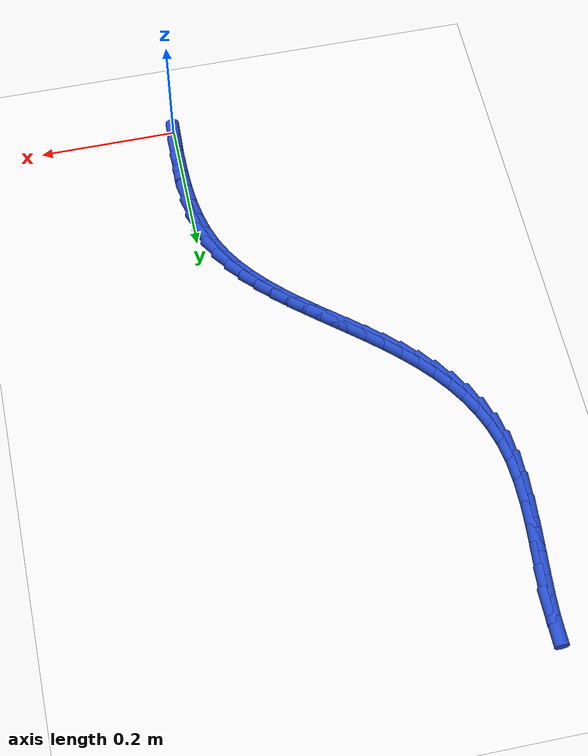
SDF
<sdf version="1.6">
 <world name="default">
  <model name="ground_plane">
   <static>1</static>
   <link name="link">
    <collision name="collision">
     <geometry><plane><normal>0 0 1</normal><size>100 100</size></plane></geometry>
     <surface><friction><ode><mu>100</mu><mu2>50</mu2></ode></friction></surface>
    </collision>
    <visual name="visual">
     <cast_shadows>0</cast_shadows>
     <geometry><plane><normal>0 0 1</normal><size>100 100</size></plane></geometry>
     <material>
      <script><uri>file://media/materials/scripts/gazebo.material</uri><name>Gazebo/WhiteGlow</name></script>
     </material>
    </visual>
   </link>
  </model>
  <model name="line">
   <link name="link_2">
    <pose>0.0016596048798578349 0.05573623796971701 0.01 0 1.57 -1.5633033248760873</pose>
    <collision name="collision">
     <geometry><cylinder><radius>0.01</radius><length>0.08</length></cylinder></geometry>
    </collision>
    <visual name="visual">
     <material>
      <script><name>Gazebo/Blue</name><uri>file://media/materials/scripts/gazebo.material</uri></script>
     </material>
     <geometry><cylinder><radius>0.01</radius><length>0.08</length></cylinder></geometry>
    </visual>
   </link>
   <link name="link_3">
    <pose>0.0014514285237242834 0.08351848897521835 0.01 0 1.57 -1.5227702748810366</pose>
    <collision name="collision">
     <geometry><cylinder><radius>0.01</radius><length>0.08</length></cylinder></geometry>
    </collision>
    <visual name="visual">
     <material>
      <script><name>Gazebo/Blue</name><uri>file://media/materials/scripts/gazebo.material</uri></script>
     </material>
     <geometry><cylinder><radius>0.01</radius><length>0.08</length></cylinder></geometry>
    </visual>
   </link>
   <link name="link_4">
    <pose>0.00013251821875655137 0.11095976456533392 0.01 0 1.57 -1.4691044345274904</pose>
    <collision name="collision">
     <geometry><cylinder><radius>0.01</radius><length>0.08</length></cylinder></geometry>
    </collision>
    <visual name="visual">
     <material>
      <script><name>Gazebo/Blue</name><uri>file://media/materials/scripts/gazebo.material</uri></script>
     </material>
     <geometry><cylinder><radius>0.01</radius><length>0.08</length></cylinder></geometry>
    </visual>
   </link>
   <link name="link_5">
    <pose>-0.002611187098639764 0.1378472671682029 0.01 0 1.57 -1.400843733810222</pose>
    <collision name="collision">
     <geometry><cylinder><radius>0.01</radius><length>0.08</length></cylinder></geometry>
    </collision>
    <visual name="visual">
     <material>
      <script><name>Gazebo/Blue</name><uri>file://media/materials/scripts/gazebo.material</uri></script>
     </material>
     <geometry><cylinder><radius>0.01</radius><length>0.08</length></cylinder></geometry>
    </visual>
   </link>
   <link name="link_6">
    <pose>-0.007093748492059067 0.16396819921196445 0.01 0 1.57 -1.3164777483191943</pose>
    <collision name="collision">
     <geometry><cylinder><radius>0.01</radius><length>0.08</length></cylinder></geometry>
    </collision>
    <visual name="visual">
     <material>
      <script><name>Gazebo/Blue</name><uri>file://media/materials/scripts/gazebo.material</uri></script>
     </material>
     <geometry><cylinder><radius>0.01</radius><length>0.08</length></cylinder></geometry>
    </visual>
   </link>
   <link name="link_7">
    <pose>-0.013629227025095763 0.18910976312475786 0.01 0 1.57 -1.2149048669875717</pose>
    <collision name="collision">
     <geometry><cylinder><radius>0.01</radius><length>0.08</length></cylinder></geometry>
    </collision>
    <visual name="visual">
     <material>
      <script><name>Gazebo/Blue</name><uri>file://media/materials/scripts/gazebo.material</uri></script>
     </material>
     <geometry><cylinder><radius>0.01</radius><length>0.08</length></cylinder></geometry>
    </visual>
   </link>
   <link name="link_8">
    <pose>-0.022531683761344255 0.2130591613347223 0.01 0 1.57 -1.0999398042648565</pose>
    <collision name="collision">
     <geometry><cylinder><radius>0.01</radius><length>0.08</length></cylinder></geometry>
    </collision>
    <visual name="visual">
     <material>
      <script><name>Gazebo/Blue</name><uri>file://media/materials/scripts/gazebo.material</uri></script>
     </material>
     <geometry><cylinder><radius>0.01</radius><length>0.08</length></cylinder></geometry>
    </visual>
   </link>
   <link name="link_9">
    <pose>-0.03403341591915063 0.23565393602419726 0.01 0 1.57 -0.992904981831658</pose>
    <collision name="collision">
     <geometry><cylinder><radius>0.01</radius><length>0.08</length></cylinder></geometry>
    </collision>
    <visual name="visual">
     <material>
      <script><name>Gazebo/Blue</name><uri>file://media/materials/scripts/gazebo.material</uri></script>
     </material>
     <geometry><cylinder><radius>0.01</radius><length>0.08</length></cylinder></geometry>
    </visual>
   </link>
   <link name="link_10">
    <pose>-0.04794767366931354 0.25698962513523477 0.01 0 1.57 -0.9020295866422652</pose>
    <collision name="collision">
     <geometry><cylinder><radius>0.01</radius><length>0.08</length></cylinder></geometry>
    </collision>
    <visual name="visual">
     <material>
      <script><name>Gazebo/Blue</name><uri>file://media/materials/scripts/gazebo.material</uri></script>
     </material>
     <geometry><cylinder><radius>0.01</radius><length>0.08</length></cylinder></geometry>
    </visual>
   </link>
   <link name="link_11">
    <pose>-0.06395382332059835 0.2772441952271527 0.01 0 1.57 -0.8277685829872988</pose>
    <collision name="collision">
     <geometry><cylinder><radius>0.01</radius><length>0.08</length></cylinder></geometry>
    </collision>
    <visual name="visual">
     <material>
      <script><name>Gazebo/Blue</name><uri>file://media/materials/scripts/gazebo.material</uri></script>
     </material>
     <geometry><cylinder><radius>0.01</radius><length>0.08</length></cylinder></geometry>
    </visual>
   </link>
   <link name="link_12">
    <pose>-0.08173117221646523 0.296595649162588 0.01 0 1.57 -0.7695091924597142</pose>
    <collision name="collision">
     <geometry><cylinder><radius>0.01</radius><length>0.08</length></cylinder></geometry>
    </collision>
    <visual name="visual">
     <material>
      <script><name>Gazebo/Blue</name><uri>file://media/materials/scripts/gazebo.material</uri></script>
     </material>
     <geometry><cylinder><radius>0.01</radius><length>0.08</length></cylinder></geometry>
    </visual>
   </link>
   <link name="link_13">
    <pose>-0.10095902770037428 0.31522198980417754 0.01 0 1.57 -0.726190054199158</pose>
    <collision name="collision">
     <geometry><cylinder><radius>0.01</radius><length>0.08</length></cylinder></geometry>
    </collision>
    <visual name="visual">
     <material>
      <script><name>Gazebo/Blue</name><uri>file://media/materials/scripts/gazebo.material</uri></script>
     </material>
     <geometry><cylinder><radius>0.01</radius><length>0.08</length></cylinder></geometry>
    </visual>
   </link>
   <link name="link_14">
    <pose>-0.1213166971157856 0.3333012200145582 0.01 0 1.57 -0.6967182305172623</pose>
    <collision name="collision">
     <geometry><cylinder><radius>0.01</radius><length>0.08</length></cylinder></geometry>
    </collision>
    <visual name="visual">
     <material>
      <script><name>Gazebo/Blue</name><uri>file://media/materials/scripts/gazebo.material</uri></script>
     </material>
     <geometry><cylinder><radius>0.01</radius><length>0.08</length></cylinder></geometry>
    </visual>
   </link>
   <link name="link_15">
    <pose>-0.14248348780615938 0.35101134265636696 0.01 0 1.57 -0.6802031845086991</pose>
    <collision name="collision">
     <geometry><cylinder><radius>0.01</radius><length>0.08</length></cylinder></geometry>
    </collision>
    <visual name="visual">
     <material>
      <script><name>Gazebo/Blue</name><uri>file://media/materials/scripts/gazebo.material</uri></script>
     </material>
     <geometry><cylinder><radius>0.01</radius><length>0.08</length></cylinder></geometry>
    </visual>
   </link>
   <link name="link_16">
    <pose>-0.1641387071149557 0.36853036059224076 0.01 0 1.57 -0.6760681796360968</pose>
    <collision name="collision">
     <geometry><cylinder><radius>0.01</radius><length>0.08</length></cylinder></geometry>
    </collision>
    <visual name="visual">
     <material>
      <script><name>Gazebo/Blue</name><uri>file://media/materials/scripts/gazebo.material</uri></script>
     </material>
     <geometry><cylinder><radius>0.01</radius><length>0.08</length></cylinder></geometry>
    </visual>
   </link>
   <link name="link_17">
    <pose>-0.18596166238563477 0.3860362766848165 0.01 0 1.57 -0.6840913972933165</pose>
    <collision name="collision">
     <geometry><cylinder><radius>0.01</radius><length>0.08</length></cylinder></geometry>
    </collision>
    <visual name="visual">
     <material>
      <script><name>Gazebo/Blue</name><uri>file://media/materials/scripts/gazebo.material</uri></script>
     </material>
     <geometry><cylinder><radius>0.01</radius><length>0.08</length></cylinder></geometry>
    </visual>
   </link>
   <link name="link_18">
    <pose>-0.20763166096165664 0.4037070937967312 0.01 0 1.57 -0.7044070738249729</pose>
    <collision name="collision">
     <geometry><cylinder><radius>0.01</radius><length>0.08</length></cylinder></geometry>
    </collision>
    <visual name="visual">
     <material>
      <script><name>Gazebo/Blue</name><uri>file://media/materials/scripts/gazebo.material</uri></script>
     </material>
     <geometry><cylinder><radius>0.01</radius><length>0.08</length></cylinder></geometry>
    </visual>
   </link>
   <link name="link_19">
    <pose>-0.22882801018648152 0.4217208147906216 0.01 0 1.57 -0.7374713700381726</pose>
    <collision name="collision">
     <geometry><cylinder><radius>0.01</radius><length>0.08</length></cylinder></geometry>
    </collision>
    <visual name="visual">
     <material>
      <script><name>Gazebo/Blue</name><uri>file://media/materials/scripts/gazebo.material</uri></script>
     </material>
     <geometry><cylinder><radius>0.01</radius><length>0.08</length></cylinder></geometry>
    </visual>
   </link>
   <link name="link_20">
    <pose>-0.2492301631041366 0.4402554234602079 0.01 0 1.57 -0.7832770899331617</pose>
    <collision name="collision">
     <geometry><cylinder><radius>0.01</radius><length>0.08</length></cylinder></geometry>
    </collision>
    <visual name="visual">
     <material>
      <script><name>Gazebo/Blue</name><uri>file://media/materials/scripts/gazebo.material</uri></script>
     </material>
     <geometry><cylinder><radius>0.01</radius><length>0.08</length></cylinder></geometry>
    </visual>
   </link>
   <link name="link_21">
    <pose>-0.2685421745378144 0.45948568378141497 0.01 0 1.57 -0.8409162412115178</pose>
    <collision name="collision">
     <geometry><cylinder><radius>0.01</radius><length>0.08</length></cylinder></geometry>
    </collision>
    <visual name="visual">
     <material>
      <script><name>Gazebo/Blue</name><uri>file://media/materials/scripts/gazebo.material</uri></script>
     </material>
     <geometry><cylinder><radius>0.01</radius><length>0.08</length></cylinder></geometry>
    </visual>
   </link>
   <link name="link_22">
    <pose>-0.2865201827230955 0.47957954318665835 0.01 0 1.57 -0.9104443464703046</pose>
    <collision name="collision">
     <geometry><cylinder><radius>0.01</radius><length>0.08</length></cylinder></geometry>
    </collision>
    <visual name="visual">
     <material>
      <script><name>Gazebo/Blue</name><uri>file://media/materials/scripts/gazebo.material</uri></script>
     </material>
     <geometry><cylinder><radius>0.01</radius><length>0.08</length></cylinder></geometry>
    </visual>
   </link>
   <link name="link_23">
    <pose>-0.3029269577387636 0.5007040811497155 0.01 0 1.57 -0.9916290297961323</pose>
    <collision name="collision">
     <geometry><cylinder><radius>0.01</radius><length>0.08</length></cylinder></geometry>
    </collision>
    <visual name="visual">
     <material>
      <script><name>Gazebo/Blue</name><uri>file://media/materials/scripts/gazebo.material</uri></script>
     </material>
     <geometry><cylinder><radius>0.01</radius><length>0.08</length></cylinder></geometry>
    </visual>
   </link>
   <link name="link_24">
    <pose>-0.317525269663603 0.5230263771443634 0.01 0 1.57 -1.0834892252430475</pose>
    <collision name="collision">
     <geometry><cylinder><radius>0.01</radius><length>0.08</length></cylinder></geometry>
    </collision>
    <visual name="visual">
     <material>
      <script><name>Gazebo/Blue</name><uri>file://media/materials/scripts/gazebo.material</uri></script>
     </material>
     <geometry><cylinder><radius>0.01</radius><length>0.08</length></cylinder></geometry>
    </visual>
   </link>
   <link name="link_25">
    <pose>-0.3300778885763975 0.546713510644379 0.01 0 1.57 -1.1840815447950934</pose>
    <collision name="collision">
     <geometry><cylinder><radius>0.01</radius><length>0.08</length></cylinder></geometry>
    </collision>
    <visual name="visual">
     <material>
      <script><name>Gazebo/Blue</name><uri>file://media/materials/scripts/gazebo.material</uri></script>
     </material>
     <geometry><cylinder><radius>0.01</radius><length>0.08</length></cylinder></geometry>
    </visual>
   </link>
   <link name="link_26">
    <pose>-0.3403475845559311 0.5719325611235392 0.01 0 1.57 -1.2904826595977297</pose>
    <collision name="collision">
     <geometry><cylinder><radius>0.01</radius><length>0.08</length></cylinder></geometry>
    </collision>
    <visual name="visual">
     <material>
      <script><name>Gazebo/Blue</name><uri>file://media/materials/scripts/gazebo.material</uri></script>
     </material>
     <geometry><cylinder><radius>0.01</radius><length>0.08</length></cylinder></geometry>
    </visual>
   </link>
   <link name="link_27">
    <pose>-0.3480971276809878 0.5988506080556208 0.01 0 1.57 -1.3990666883644753</pose>
    <collision name="collision">
     <geometry><cylinder><radius>0.01</radius><length>0.08</length></cylinder></geometry>
    </collision>
    <visual name="visual">
     <material>
      <script><name>Gazebo/Blue</name><uri>file://media/materials/scripts/gazebo.material</uri></script>
     </material>
     <geometry><cylinder><radius>0.01</radius><length>0.08</length></cylinder></geometry>
    </visual>
   </link>
   <link name="link_28">
    <pose>-0.3530893740554741 0.6276346554776399 0.01 0 1.57 -1.4995953994509539</pose>
    <collision name="collision">
     <geometry><cylinder><radius>0.01</radius><length>0.08</length></cylinder></geometry>
    </collision>
    <visual name="visual">
     <material>
      <script><name>Gazebo/Blue</name><uri>file://media/materials/scripts/gazebo.material</uri></script>
     </material>
     <geometry><cylinder><radius>0.01</radius><length>0.08</length></cylinder></geometry>
    </visual>
   </link>
   <link name="link_29">
    <pose>-0.35527551323244955 0.6582865549102765 0.01 0 1.57 1.568259517518006</pose>
    <collision name="collision">
     <geometry><cylinder><radius>0.01</radius><length>0.08</length></cylinder></geometry>
    </collision>
    <visual name="visual">
     <material>
      <script><name>Gazebo/Blue</name><uri>file://media/materials/scripts/gazebo.material</uri></script>
     </material>
     <geometry><cylinder><radius>0.01</radius><length>0.08</length></cylinder></geometry>
    </visual>
   </link>
   <link name="link_30">
    <pose>-0.3551943190750306 0.6902928960988796 0.01 0 1.57 1.5190675632285404</pose>
    <collision name="collision">
     <geometry><cylinder><radius>0.01</radius><length>0.08</length></cylinder></geometry>
    </collision>
    <visual name="visual">
     <material>
      <script><name>Gazebo/Blue</name><uri>file://media/materials/scripts/gazebo.material</uri></script>
     </material>
     <geometry><cylinder><radius>0.01</radius><length>0.08</length></cylinder></geometry>
    </visual>
   </link>
   <link name="link_31">
    <pose>-0.35349883604991483 0.7230400631279896 0.01 0 1.57 1.490157040372215</pose>
    <collision name="collision">
     <geometry><cylinder><radius>0.01</radius><length>0.08</length></cylinder></geometry>
    </collision>
    <visual name="visual">
     <material>
      <script><name>Gazebo/Blue</name><uri>file://media/materials/scripts/gazebo.material</uri></script>
     </material>
     <geometry><cylinder><radius>0.01</radius><length>0.08</length></cylinder></geometry>
    </visual>
   </link>
   <link name="link_32">
    <pose>-0.3508421086238002 0.7559144400821477 0.01 0 1.57 1.4795066805859032</pose>
    <collision name="collision">
     <geometry><cylinder><radius>0.01</radius><length>0.08</length></cylinder></geometry>
    </collision>
    <visual name="visual">
     <material>
      <script><name>Gazebo/Blue</name><uri>file://media/materials/scripts/gazebo.material</uri></script>
     </material>
     <geometry><cylinder><radius>0.01</radius><length>0.08</length></cylinder></geometry>
    </visual>
   </link>
   <link name="link_33">
    <pose>-0.3478771812633844 0.7883024110458939 0.01 0 1.57 1.4872502951203692</pose>
    <collision name="collision">
     <geometry><cylinder><radius>0.01</radius><length>0.08</length></cylinder></geometry>
    </collision>
    <visual name="visual">
     <material>
      <script><name>Gazebo/Blue</name><uri>file://media/materials/scripts/gazebo.material</uri></script>
     </material>
     <geometry><cylinder><radius>0.01</radius><length>0.08</length></cylinder></geometry>
    </visual>
   </link>
   <link name="link_34">
    <pose>-0.3452570984353651 0.8195903601037692 0.01 0 1.57 1.5159997887330037</pose>
    <collision name="collision">
     <geometry><cylinder><radius>0.01</radius><length>0.08</length></cylinder></geometry>
    </collision>
    <visual name="visual">
     <material>
      <script><name>Gazebo/Blue</name><uri>file://media/materials/scripts/gazebo.material</uri></script>
     </material>
     <geometry><cylinder><radius>0.01</radius><length>0.08</length></cylinder></geometry>
    </visual>
   </link>
   <link name="link_35">
    <pose>-0.34363490460644036 0.8491646713403145 0.01 0 1.57 -1.569741547716111</pose>
    <collision name="collision">
     <geometry><cylinder><radius>0.01</radius><length>0.08</length></cylinder></geometry>
    </collision>
    <visual name="visual">
     <material>
      <script><name>Gazebo/Blue</name><uri>file://media/materials/scripts/gazebo.material</uri></script>
     </material>
     <geometry><cylinder><radius>0.01</radius><length>0.08</length></cylinder></geometry>
    </visual>
   </link>
   <link name="link_291">
    <pose>0.0011388185730759127 0.027862607734029536 0.01 0 1.57 1.5330952500834893</pose>
    <collision name="collision">
     <geometry><cylinder><radius>0.01</radius><length>0.08</length></cylinder></geometry>
    </collision>
    <visual name="visual">
     <material>
      <script><name>Gazebo/Blue</name><uri>file://media/materials/scripts/gazebo.material</uri></script>
     </material>
     <geometry><cylinder><radius>0.01</radius><length>0.08</length></cylinder></geometry>
    </visual>
   </link>
   <link name="link_292">
    <pose>0.002201286658452446 0.056030626876433356 0.01 0 1.57 1.5315293173347586</pose>
    <collision name="collision">
     <geometry><cylinder><radius>0.01</radius><length>0.08</length></cylinder></geometry>
    </collision>
    <visual name="visual">
     <material>
      <script><name>Gazebo/Blue</name><uri>file://media/materials/scripts/gazebo.material</uri></script>
     </material>
     <geometry><cylinder><radius>0.01</radius><length>0.08</length></cylinder></geometry>
    </visual>
   </link>
  </model>
 </world>
</sdf>
